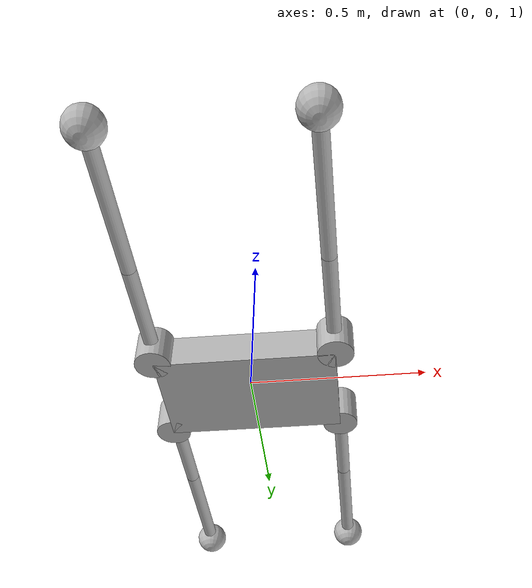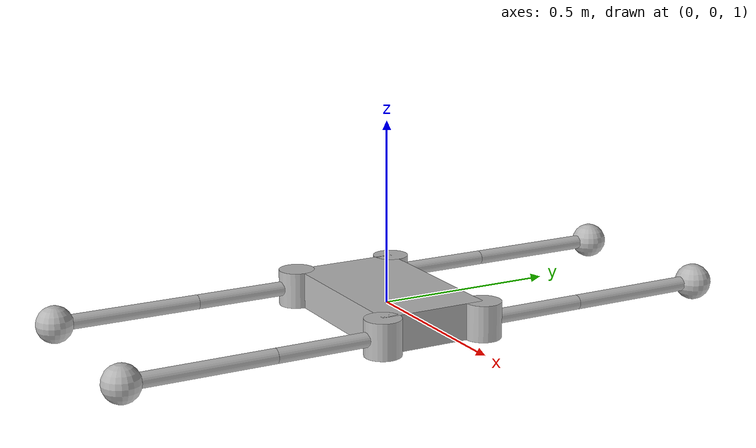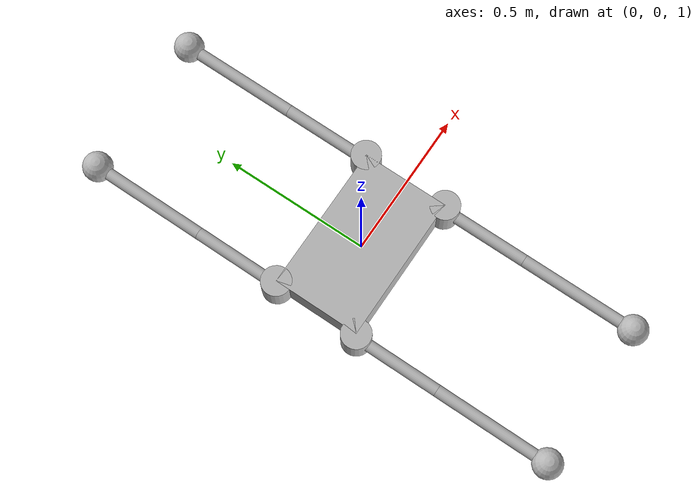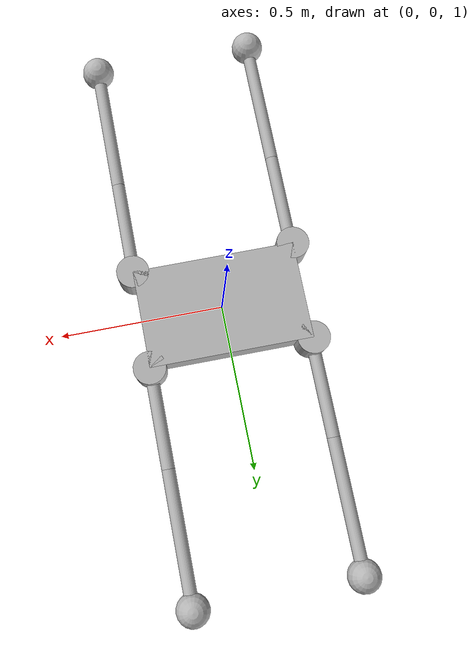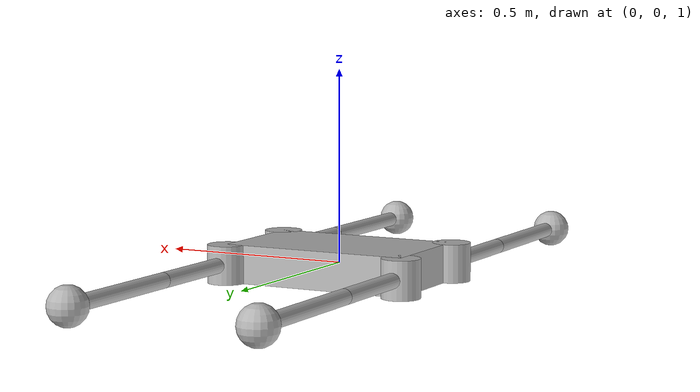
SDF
<?xml version="1.0"?>
<sdf version='1.7'>
    <model name="Tetrapod">
        <pose>0 0 1 0 0 0</pose>
        <static>false</static>

        <link name="body">
            <pose>0 0 0 0 0 0</pose>

            <inertial>
                <pose>0 0 0 0 0 0</pose>
                <mass>10.0</mass>
                <inertia>
                <ixx>1.0</ixx>
                <ixy>0</ixy>
                <ixz>0</ixz>
                <iyy>1.0</iyy>
                <iyz>0.0</iyz>
                <izz>1.0</izz>
                </inertia>
            </inertial>

            <visual name="body_visual">
                <geometry>
                    <box>
                        <size>0.5 0.3 0.1</size>
                    </box>
                </geometry>
            </visual>
            <collision name="body_collision">
                <geometry>
                    <box>
                        <size>0.5 0.3 0.1</size>
                    </box>
                </geometry>
            </collision>
        </link>

<!-- FRONT LEFT LEG -->

        <link name="front_left_hip">
            <pose>0.25 0.15 0 0 0 1.5708</pose>
            <visual name="front_left_hip_visual">
                <geometry>
                    <cylinder>
                        <radius>0.05</radius>
                        <length>0.1</length>
                    </cylinder>
                </geometry>
            </visual>
            <inertial>
                <pose>0 0 0 0 0 0</pose>
                <mass>1.0</mass>
                <inertia>
                <ixx>0.1</ixx>
                <ixy>0</ixy>
                <ixz>0</ixz>
                <iyy>0.1</iyy>
                <iyz>0.0</iyz>
                <izz>0.1</izz>
                </inertia>
            </inertial>
        </link>

        <joint name="front_left_hip_yaw" type="revolute">
            <pose>0 0 0 0 0 0</pose>
            <child>front_left_hip</child>
            <parent>body</parent>
            <axis>
                <xyz>0 0 1</xyz>
                <limit>
                    <lower>-1.5708</lower>
                    <upper>1.5708</upper>
                    <effort>30</effort>
                    <velocity>1000</velocity>
                </limit>
            </axis>
        </joint>

        <link name="front_left_upper_leg">
            <pose>0.25 0.30 0 -1.5708 0 0</pose>
            <visual name="left_upper_leg">
                <geometry>
                    <cylinder>
                        <radius>0.02</radius>
                        <length>0.3</length>
                    </cylinder>
                </geometry>
            </visual>
            <inertial>
                <pose>0 0 0 0 0 0</pose>
                <mass>1.0</mass>
                <inertia>
                <ixx>0.1</ixx>
                <ixy>0</ixy>
                <ixz>0</ixz>
                <iyy>0.1</iyy>
                <iyz>0.0</iyz>
                <izz>0.1</izz>
                </inertia>
            </inertial>
        </link>

        <joint name="front_left_hip_pitch" type="revolute">
            <parent>front_left_hip</parent>
            <child>front_left_upper_leg</child>
            <pose frame="front_left_hip">0 0 -0.15 0 0 0</pose>
            <axis>
                <xyz>1 0 0</xyz>
                <limit>
                    <lower>-2.5</lower>
                    <upper>2.5</upper>
                    <effort>30</effort>
                    <velocity>1000</velocity>
                </limit>
            </axis>
        </joint>

        <link name="front_left_lower_leg">
            <pose>0.25 0.65 0 -1.5708 0 0</pose>
            <visual name="front_left_lower_leg_visual">
                <geometry>
                    <cylinder>
                        <radius>0.02</radius>
                        <length>0.4</length>
                    </cylinder>
                </geometry>
            </visual>
            <collision name="front_left_collision">
                <geometry>
                    <cylinder>
                        <radius>0.02</radius>
                        <length>0.4</length>
                    </cylinder>
                </geometry>
            </collision>
            <inertial>
                <pose>0 0 0 0 0 0</pose>
                <mass>1.0</mass>
                <inertia>
                <ixx>0.1</ixx>
                <ixy>0</ixy>
                <ixz>0</ixz>
                <iyy>0.1</iyy>
                <iyz>0.0</iyz>
                <izz>0.1</izz>
                </inertia>
            </inertial>
        </link>

        <joint name="front_left_knee_joint" type="revolute">
            <parent>front_left_upper_leg</parent>
            <child>front_left_lower_leg</child>
            <pose>0 0 -0.2 0 0 0</pose>
            <axis>
                <xyz>1 0 0</xyz>
                <limit>
                    <lower>-2.5</lower>
                    <upper>2.5</upper>
                    <effort>30</effort>
                    <velocity>1000</velocity>
                </limit>
            </axis>
        </joint>

        <link name="front_left_foot">
            <pose>0.25 0.85 0 0 0 0</pose>
            <inertial>
                <pose>0 0 0 0 0 0</pose>
                <mass>0.1</mass>
                <inertia>
                    <ixx>0.01</ixx>
                    <ixy>0</ixy>
                    <ixz>0</ixz>
                    <iyy>0.01</iyy>
                    <iyz>0.0</iyz>
                    <izz>0.01</izz>
                </inertia>
            </inertial>
            <visual name="left_front_foot_visual">
                <pose>0 0 0 0 0 0</pose>
                <geometry>
                    <sphere>
                        <radius>0.05</radius>
                    </sphere>
                </geometry>
            </visual>
            <collision name="front_left_foot_collision">
                <geometry>
                    <sphere>
                        <radius>0.05</radius>
                    </sphere>
                </geometry>
                <surface>
                    <friction>
                        <ode>
                            <mu>0.7</mu>
                        </ode>
                    </friction>
                </surface>
            </collision>
        </link>

        <joint name="front_left_foot_joint" type="fixed">
            <parent>front_left_lower_leg</parent>
            <child>front_left_foot</child>
            <pose>0 0 0 0 0 0</pose>
        </joint>

<!-- FRONT RIGHT LEG-->

        <link name="front_right_hip">
            <pose>0.25 -0.15 0 0 0 1.5708</pose>
            <visual name="front_right_hip_visual">
                <geometry>
                    <cylinder>
                        <radius>0.05</radius>
                        <length>0.1</length>
                    </cylinder>
                </geometry>
            </visual>
            <inertial>
                <pose>0 0 0 0 0 0</pose>
                <mass>1.0</mass>
                <inertia>
                <ixx>0.1</ixx>
                <ixy>0</ixy>
                <ixz>0</ixz>
                <iyy>0.1</iyy>
                <iyz>0.0</iyz>
                <izz>0.1</izz>
                </inertia>
            </inertial>
        </link>

        <joint name="front_right_hip_yaw" type="revolute">
            <pose>0 0 0 0 0 0</pose>
            <child>front_right_hip</child>
            <parent>body</parent>
            <axis>
                <xyz>0 0 1</xyz>
                <limit>
                    <lower>-1.5708</lower>
                    <upper>1.5708</upper>
                    <effort>30</effort>
                    <velocity>1000</velocity>
                </limit>
            </axis>
        </joint>

        <link name="front_right_upper_leg">
            <pose>0.25 -0.30 0 -1.5708 0 0</pose>
            <visual name="right_upper_leg">
                <geometry>
                    <cylinder>
                        <radius>0.02</radius>
                        <length>0.3</length>
                    </cylinder>
                </geometry>
            </visual>
            <inertial>
                <pose>0 0 0 0 0 0</pose>
                <mass>1.0</mass>
                <inertia>
                <ixx>0.1</ixx>
                <ixy>0</ixy>
                <ixz>0</ixz>
                <iyy>0.1</iyy>
                <iyz>0.0</iyz>
                <izz>0.1</izz>
                </inertia>
            </inertial>
        </link>

        <joint name="front_right_hip_pitch" type="revolute">
            <parent>front_right_hip</parent>
            <child>front_right_upper_leg</child>
            <pose frame="front_right_hip">0 0 0.15 0 0 0</pose>
            <axis>
                <xyz>1 0 0</xyz>
                <limit>
                    <lower>-2.5</lower>
                    <upper>2.5</upper>
                    <effort>30</effort>
                    <velocity>1000</velocity>
                </limit>
            </axis>
        </joint>

        <link name="front_right_lower_leg">
            <pose>0.25 -0.65 0 -1.5708 0 0</pose>
            <visual name="front_right_lower_leg_visual">
                <geometry>
                    <cylinder>
                        <radius>0.02</radius>
                        <length>0.4</length>
                    </cylinder>
                </geometry>
            </visual>
            <collision name="front_right_collision">
                <geometry>
                    <cylinder>
                        <radius>0.02</radius>
                        <length>0.4</length>
                    </cylinder>
                </geometry>
            </collision>
            <inertial>
                <pose>0 0 0 0 0 0</pose>
                <mass>1.0</mass>
                <inertia>
                <ixx>0.1</ixx>
                <ixy>0</ixy>
                <ixz>0</ixz>
                <iyy>0.1</iyy>
                <iyz>0.0</iyz>
                <izz>0.1</izz>
                </inertia>
            </inertial>
        </link>

        <joint name="front_right_knee_joint" type="revolute">
            <parent>front_right_upper_leg</parent>
            <child>front_right_lower_leg</child>
            <pose>0 0 0.2 0 0 0</pose>
            <axis>
                <xyz>1 0 0</xyz>
                <limit>
                    <lower>-2.5</lower>
                    <upper>2.5</upper>
                    <effort>30</effort>
                    <velocity>1000</velocity>
                </limit>
            </axis>
        </joint>

        <link name="front_right_foot">
            <pose>0.25 -0.85 0 0 0 0</pose>
            <inertial>
                <pose>0 0 0 0 0 0</pose>
                <mass>0.1</mass>
                <inertia>
                    <ixx>0.01</ixx>
                    <ixy>0</ixy>
                    <ixz>0</ixz>
                    <iyy>0.01</iyy>
                    <iyz>0.0</iyz>
                    <izz>0.01</izz>
                </inertia>
            </inertial>
            <visual name="front_right_foot_visual">
                <pose>0 0 0 0 0 0</pose>
                <geometry>
                    <sphere>
                        <radius>0.05</radius>
                    </sphere>
                </geometry>
            </visual>
            <collision name="front_right_foot_collision">
                <geometry>
                    <sphere>
                        <radius>0.05</radius>
                    </sphere>
                </geometry>
                <surface>
                    <friction>
                        <ode>
                            <mu>0.7</mu>
                        </ode>
                    </friction>
                </surface>
            </collision>
        </link>

        <joint name="front_right_foot_joint" type="fixed">
            <parent>front_right_lower_leg</parent>
            <child>front_right_foot</child>
            <pose>0 0 0 0 0 0</pose>
        </joint>

<!-- REAR LEFT LEG -->

        <link name="rear_left_hip">
            <pose>-0.25 0.15 0 0 0 1.5708</pose>
            <visual name="rear_left_hip_visual">
                <geometry>
                    <cylinder>
                        <radius>0.05</radius>
                        <length>0.1</length>
                    </cylinder>
                </geometry>
            </visual>
            <inertial>
                <pose>0 0 0 0 0 0</pose>
                <mass>1.0</mass>
                <inertia>
                <ixx>0.1</ixx>
                <ixy>0</ixy>
                <ixz>0</ixz>
                <iyy>0.1</iyy>
                <iyz>0.0</iyz>
                <izz>0.1</izz>
                </inertia>
            </inertial>
        </link>

        <joint name="rear_left_hip_yaw" type="revolute">
            <pose>0 0 0 0 0 0</pose>
            <child>rear_left_hip</child>
            <parent>body</parent>
            <axis>
                <xyz>0 0 1</xyz>
                <limit>
                    <lower>-1.5708</lower>
                    <upper>1.5708</upper>
                    <effort>30</effort>
                    <velocity>1000</velocity>
                </limit>
            </axis>
        </joint>

        <link name="rear_left_upper_leg">
            <pose>-0.25 0.30 0 -1.5708 0 0</pose>
            <visual name="left_upper_leg">
                <geometry>
                    <cylinder>
                        <radius>0.02</radius>
                        <length>0.3</length>
                    </cylinder>
                </geometry>
            </visual>
            <inertial>
                <pose>0 0 0 0 0 0</pose>
                <mass>1.0</mass>
                <inertia>
                <ixx>0.1</ixx>
                <ixy>0</ixy>
                <ixz>0</ixz>
                <iyy>0.1</iyy>
                <iyz>0.0</iyz>
                <izz>0.1</izz>
                </inertia>
            </inertial>
        </link>

        <joint name="rear_left_hip_pitch" type="revolute">
            <parent>rear_left_hip</parent>
            <child>rear_left_upper_leg</child>
            <pose frame="rear_left_hip">0 0 -0.15 0 0 0</pose>
            <axis>
                <xyz>1 0 0</xyz>
                <limit>
                    <lower>-2.5</lower>
                    <upper>2.5</upper>
                    <effort>30</effort>
                    <velocity>1000</velocity>
                </limit>
            </axis>
        </joint>

        <link name="rear_left_lower_leg">
            <pose>-0.25 0.65 0 -1.5708 0 0</pose>
            <visual name="rear_left_lower_leg_visual">
                <geometry>
                    <cylinder>
                        <radius>0.02</radius>
                        <length>0.4</length>
                    </cylinder>
                </geometry>
            </visual>
            <collision name="rear_left_collision">
                <geometry>
                    <cylinder>
                        <radius>0.02</radius>
                        <length>0.4</length>
                    </cylinder>
                </geometry>
            </collision>
            <inertial>
                <pose>0 0 0 0 0 0</pose>
                <mass>1.0</mass>
                <inertia>
                <ixx>0.1</ixx>
                <ixy>0</ixy>
                <ixz>0</ixz>
                <iyy>0.1</iyy>
                <iyz>0.0</iyz>
                <izz>0.1</izz>
                </inertia>
            </inertial>
        </link>

        <joint name="rear_left_knee_joint" type="revolute">
            <parent>rear_left_upper_leg</parent>
            <child>rear_left_lower_leg</child>
            <pose>0 0 -0.2 0 0 0</pose>
            <axis>
                <xyz>1 0 0</xyz>
                <limit>
                    <lower>-2.5</lower>
                    <upper>2.5</upper>
                    <effort>30</effort>
                    <velocity>1000</velocity>
                </limit>
            </axis>
        </joint>

        <link name="rear_left_foot">
            <pose>-0.25 0.85 0 0 0 0</pose>
            <inertial>
                <pose>0 0 0 0 0 0</pose>
                <mass>0.1</mass>
                <inertia>
                    <ixx>0.01</ixx>
                    <ixy>0</ixy>
                    <ixz>0</ixz>
                    <iyy>0.01</iyy>
                    <iyz>0.0</iyz>
                    <izz>0.01</izz>
                </inertia>
            </inertial>
            <visual name="rear_left_foot_visual">
                <pose>0 0 0 0 0 0</pose>
                <geometry>
                    <sphere>
                        <radius>0.05</radius>
                    </sphere>
                </geometry>
            </visual>
            <collision name="rear_left_foot_collision">
                <geometry>
                    <sphere>
                        <radius>0.05</radius>
                    </sphere>
                </geometry>
                <surface>
                    <friction>
                        <ode>
                            <mu>0.7</mu>
                        </ode>
                    </friction>
                </surface>
            </collision>
        </link>

        <joint name="rear_left_foot_joint" type="fixed">
            <parent>rear_left_lower_leg</parent>
            <child>rear_left_foot</child>
            <pose>0 0 0 0 0 0</pose>
        </joint>

<!-- REAR RIGHT LEG-->

        <link name="rear_right_hip">
            <pose>-0.25 -0.15 0 0 0 1.5708</pose>
            <visual name="rear_right_hip_visual">
                <geometry>
                    <cylinder>
                        <radius>0.05</radius>
                        <length>0.1</length>
                    </cylinder>
                </geometry>
            </visual>
            <inertial>
                <pose>0 0 0 0 0 0</pose>
                <mass>1.0</mass>
                <inertia>
                <ixx>0.1</ixx>
                <ixy>0</ixy>
                <ixz>0</ixz>
                <iyy>0.1</iyy>
                <iyz>0.0</iyz>
                <izz>0.1</izz>
                </inertia>
            </inertial>
        </link>

        <joint name="rear_right_hip_yaw" type="revolute">
            <pose>0 0 0 0 0 0</pose>
            <child>rear_right_hip</child>
            <parent>body</parent>
            <axis>
                <xyz>0 0 1</xyz>
                <limit>
                    <lower>-1.5708</lower>
                    <upper>1.5708</upper>
                    <effort>30</effort>
                    <velocity>1000</velocity>
                </limit>
            </axis>
        </joint>

        <link name="rear_right_upper_leg">
            <pose>-0.25 -0.30 0 -1.5708 0 0</pose>
            <visual name="right_upper_leg">
                <geometry>
                    <cylinder>
                        <radius>0.02</radius>
                        <length>0.3</length>
                    </cylinder>
                </geometry>
            </visual>
            <inertial>
                <pose>0 0 0 0 0 0</pose>
                <mass>1.0</mass>
                <inertia>
                <ixx>0.1</ixx>
                <ixy>0</ixy>
                <ixz>0</ixz>
                <iyy>0.1</iyy>
                <iyz>0.0</iyz>
                <izz>0.1</izz>
                </inertia>
            </inertial>
        </link>

        <joint name="rear_right_hip_pitch" type="revolute">
            <parent>rear_right_hip</parent>
            <child>rear_right_upper_leg</child>
            <pose frame="rear_right_hip">0 0 0.15 0 0 0</pose>
            <axis>
                <xyz>1 0 0</xyz>
                <limit>
                    <lower>-2.5</lower>
                    <upper>2.5</upper>
                    <effort>30</effort>
                    <velocity>1000</velocity>
                </limit>
            </axis>
        </joint>

        <link name="rear_right_lower_leg">
            <pose>-0.25 -0.65 0 -1.5708 0 0</pose>
            <visual name="rear_right_lower_leg_visual">
                <geometry>
                    <cylinder>
                        <radius>0.02</radius>
                        <length>0.4</length>
                    </cylinder>
                </geometry>
            </visual>
            <collision name="rear_right_collision">
                <geometry>
                    <cylinder>
                        <radius>0.02</radius>
                        <length>0.4</length>
                    </cylinder>
                </geometry>
            </collision>
            <inertial>
                <pose>0 0 0 0 0 0</pose>
                <mass>1.0</mass>
                <inertia>
                <ixx>0.1</ixx>
                <ixy>0</ixy>
                <ixz>0</ixz>
                <iyy>0.1</iyy>
                <iyz>0.0</iyz>
                <izz>0.1</izz>
                </inertia>
            </inertial>
        </link>

        <joint name="rear_right_knee_joint" type="revolute">
            <parent>rear_right_upper_leg</parent>
            <child>rear_right_lower_leg</child>
            <pose>0 0 0.2 0 0 0</pose>
            <axis>
                <xyz>1 0 0</xyz>
                <limit>
                    <lower>-2.5</lower>
                    <upper>2.5</upper>
                    <effort>30</effort>
                    <velocity>1000</velocity>
                </limit>
            </axis>
        </joint>

        <link name="rear_right_foot">
            <pose>-0.25 -0.85 0 0 0 0</pose>
            <inertial>
                <pose>0 0 0 0 0 0</pose>
                <mass>0.1</mass>
                <inertia>
                    <ixx>0.01</ixx>
                    <ixy>0</ixy>
                    <ixz>0</ixz>
                    <iyy>0.01</iyy>
                    <iyz>0.0</iyz>
                    <izz>0.01</izz>
                </inertia>
            </inertial>
            <visual name="rear_right_foot_visual">
                <pose>0 0 0 0 0 0</pose>
                <geometry>
                    <sphere>
                        <radius>0.05</radius>
                    </sphere>
                </geometry>
            </visual>
            <collision name="rear_right_foot_collision">
                <geometry>
                    <sphere>
                        <radius>0.05</radius>
                    </sphere>
                </geometry>
                <surface>
                    <friction>
                        <ode>
                            <mu>0.7</mu>
                        </ode>
                    </friction>
                </surface>
            </collision>
        </link>

        <joint name="rear_right_foot_joint" type="fixed">
            <parent>rear_right_lower_leg</parent>
            <child>rear_right_foot</child>
            <pose>0 0 0 0 0 0</pose>
        </joint>

    </model>
</sdf>
